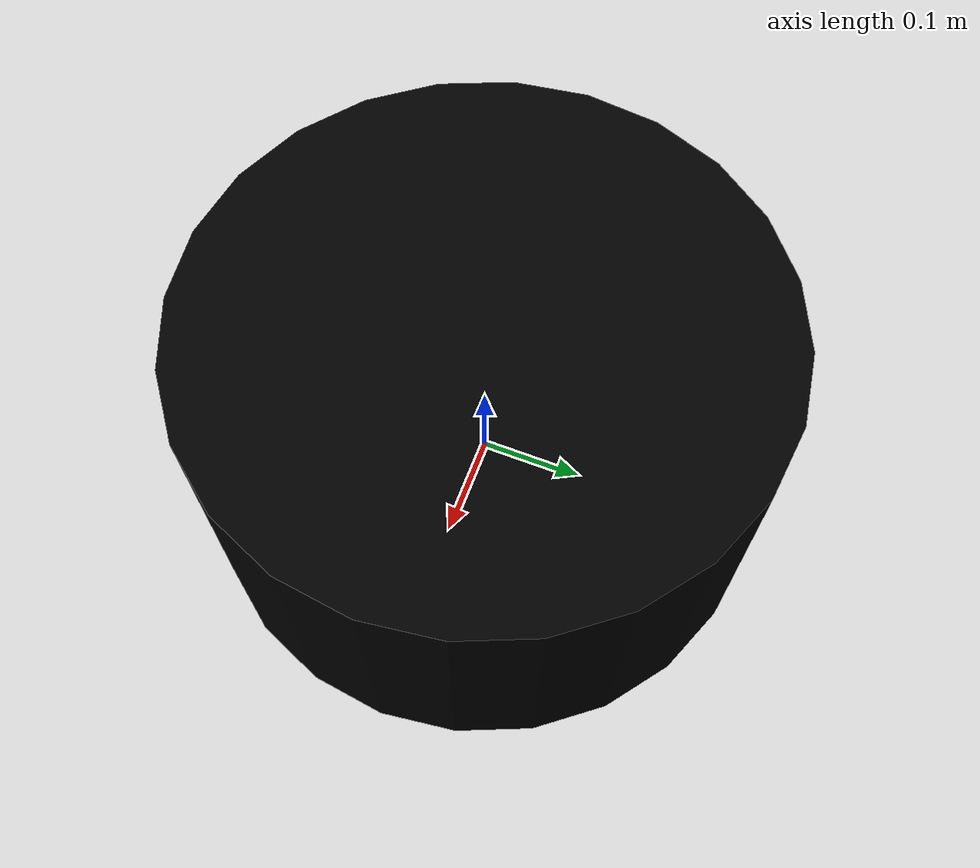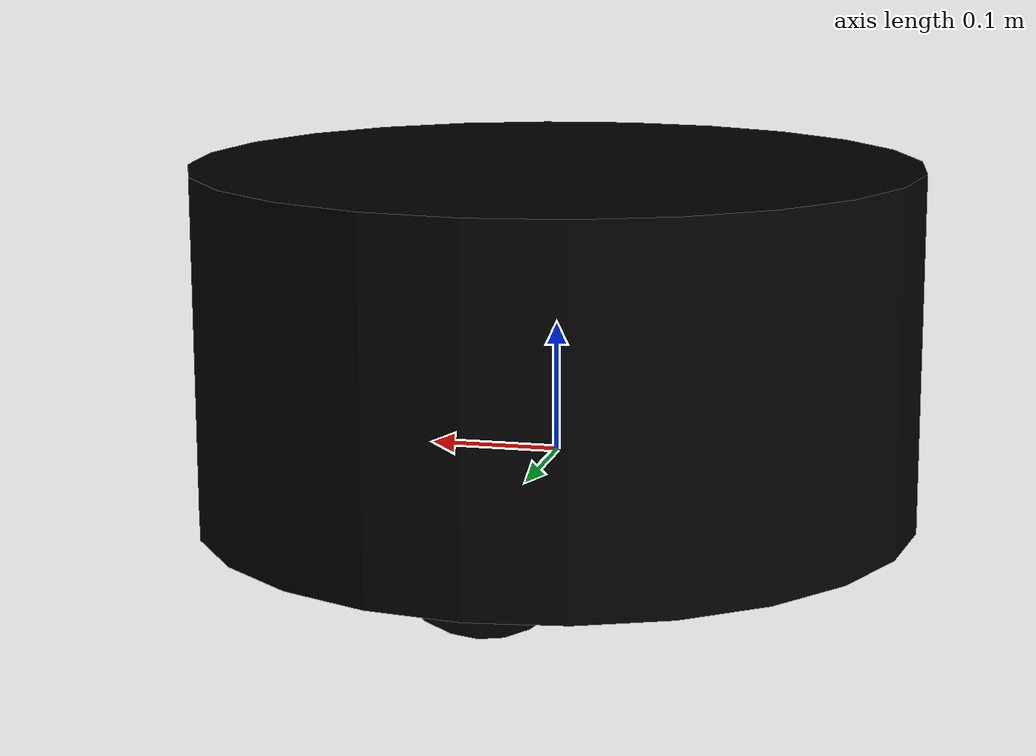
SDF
<?xml version='1.0'?>
  <sdf version='1.4'>
    <model name="korus_base">
      <static>false</static>
        <link name='base_link'>
          <pose>0 0 .0875 0 0 0</pose>
          <collision name='collision'>
            <geometry>
              <cylinder>
                <radius>.28</radius>
                <length>.275</length>
              </cylinder>
            </geometry>
          </collision>

          <collision name='caster_front_left_collision'>
            <pose>.18 .1 -.1225 0 1.57079632679 1.57079632679</pose>
            <geometry>
              <cylinder>
                <radius>.04</radius>
                <length>.02</length>
              </cylinder>
            </geometry>
            <surface>
              <friction>
                <ode>
                  <mu>0</mu>
                  <mu2>0</mu2>
                  <slip1>1.0</slip1>
                  <slip2>1.0</slip2>
                </ode>
              </friction>
            </surface>
          </collision>
          <visual name='caster_front_left_visual'>
            <pose>.18 .1 -.1225 0 1.57079632679 1.57079632679</pose>
            <geometry>
              <cylinder>
                <radius>.04</radius>
                <length>.02</length>
              </cylinder>
            </geometry>
            <material>
              <ambient>0 0 0 1</ambient>
              <diffuse>0 0 0 1</diffuse>
              <specular>0 0 0 1</specular>
              <emissive>0 0 0 0</emissive>
            </material>
          </visual>

          <collision name='caster_back_left_collision'>
            <pose>-.18 .1 -.1225 0 1.57079632679 1.57079632679</pose>
            <geometry>
              <cylinder>
                <radius>.04</radius>
                <length>.02</length>
              </cylinder>
            </geometry>
            <surface>
              <friction>
                <ode>
                  <mu>0</mu>
                  <mu2>0</mu2>
                  <slip1>1.0</slip1>
                  <slip2>1.0</slip2>
                </ode>
              </friction>
            </surface>
          </collision>
          <visual name='caster_back_left_visual'>
            <pose>-.18 .1 -.1225 0 1.57079632679 1.57079632679</pose>
            <geometry>
              <cylinder>
                <radius>.04</radius>
                <length>.02</length>
              </cylinder>
            </geometry>
            <material>
              <ambient>0 0 0 1</ambient>
              <diffuse>0 0 0 1</diffuse>
              <specular>0 0 0 1</specular>
              <emissive>0 0 0 0</emissive>
            </material>
          </visual>

          <collision name='caster_front_right_collision'>
            <pose>.18 -.1 -.1225 0 1.57079632679 1.57079632679</pose>
            <geometry>
              <cylinder>
                <radius>.04</radius>
                <length>.02</length>
              </cylinder>
            </geometry>
            <surface>
              <friction>
                <ode>
                  <mu>0</mu>
                  <mu2>0</mu2>
                  <slip1>1.0</slip1>
                  <slip2>1.0</slip2>
                </ode>
              </friction>
            </surface>
          </collision>
          <visual name='caster_front_right_visual'>
            <pose>.18 -.1 -.1225 0 1.57079632679 1.57079632679</pose>
            <geometry>
              <cylinder>
                <radius>.04</radius>
                <length>.02</length>
              </cylinder>
            </geometry>
            <material>
              <ambient>0 0 0 1</ambient>
              <diffuse>0 0 0 1</diffuse>
              <specular>0 0 0 1</specular>
              <emissive>0 0 0 0</emissive>
            </material>
          </visual>

          <collision name='caster_back_right_collision'>
            <pose>-.18 -.1 -.1225 0 1.57079632679 1.57079632679</pose>
            <geometry>
              <cylinder>
                <radius>.04</radius>
                <length>.02</length>
              </cylinder>
            </geometry>
            <surface>
              <friction>
                <ode>
                  <mu>0</mu>
                  <mu2>0</mu2>
                  <slip1>1.0</slip1>
                  <slip2>1.0</slip2>
                </ode>
              </friction>
            </surface>
          </collision>
          <visual name='caster_back_right_visual'>
            <pose>-.18 -.1 -.1225 0 1.57079632679 1.57079632679</pose>
            <geometry>
              <cylinder>
                <radius>.04</radius>
                <length>.02</length>
              </cylinder>
            </geometry>
            <material>
              <ambient>0 0 0 1</ambient>
              <diffuse>0 0 0 1</diffuse>
              <specular>0 0 0 1</specular>
              <emissive>0 0 0 0</emissive>
            </material>
          </visual>

          <visual name='visual'>
            <geometry>
              <cylinder>
                <radius>.28</radius>
                <length>.275</length>
              </cylinder>
            </geometry>
            <material>
              <ambient>1 .85 0 1</ambient>
              <diffuse>0 0 0 1</diffuse>
              <specular>0 0 0 1</specular>
              <emissive>0 0 0 1</emissive>
            </material>
          </visual>
        </link>

        <link name="left_wheel">
          <pose>0 .225 0 0 1.57079632679 1.57079632679</pose>
          <collision name="collision">
            <geometry>
              <cylinder>
                <radius>.075</radius>
                <length>.03</length>
              </cylinder>
            </geometry>
          </collision>
          <visual name="visual">
            <geometry>
              <cylinder>
                <radius>.075</radius>
                <length>.03</length>
              </cylinder>
            </geometry>
            <material>
              <ambient>0 0 0 1</ambient>
              <diffuse>0 0 0 1</diffuse>
              <specular>0 0 0 1</specular>
              <emissive>0 0 0 0</emissive>
            </material>
          </visual>
        </link>

        <link name="right_wheel">
          <pose>0 -.225 0 0 1.57079632679 1.57079632679</pose>
          <collision name="collision">
            <geometry>
              <cylinder>
                <radius>.075</radius>
                <length>.03</length>
              </cylinder>
            </geometry>
          </collision>
          <visual name="visual">
            <geometry>
              <cylinder>
                <radius>.075</radius>
                <length>.03</length>
              </cylinder>
            </geometry>
            <material>
              <ambient>0 0 0 1</ambient>
              <diffuse>0 0 0 1</diffuse>
              <specular>0 0 0 1</specular>
              <emissive>0 0 0 0</emissive>
            </material>
          </visual>
        </link>

        <joint type="revolute" name="left_wheel_joint">
          <pose>0 0 .225 0 0 0</pose>
          <child>left_wheel</child>
          <parent>base_link</parent>
          <axis>
            <xyz>0 1 0</xyz>
          </axis>
        </joint>

        <joint type="revolute" name="right_wheel_joint">
          <pose>0 0 -.225 0 0 0</pose>
          <child>right_wheel</child>
          <parent>base_link</parent>
          <axis>
            <xyz>0 1 0</xyz>
          </axis>
        </joint>
      </model>
    </sdf>
